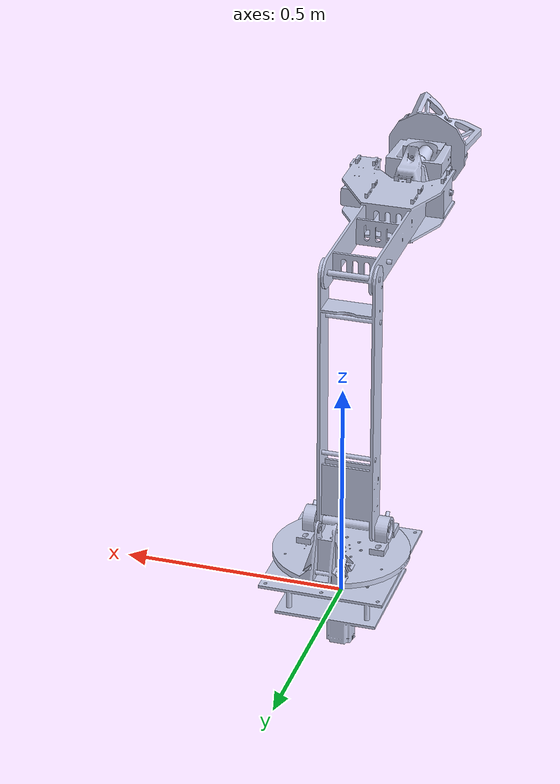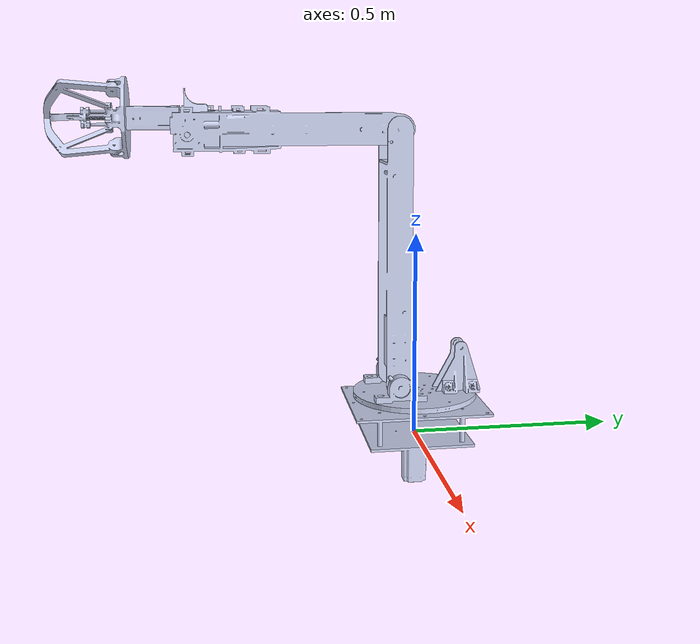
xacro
<?xml version="1.0" encoding="utf-8"?>
<robot xmlns:xacro="http://www.ros.org/wiki/xacro" name="arm_assembly">

    <xacro:arg name="arm_id" default="arm_assembly" /> <!-- Name of this arm -->
    <xacro:arg name="gazebo" default="false" /> <!-- Is the robot being simulated in gazebo? -->

    <xacro:property name="arm_id" value="$(arg arm_id)" />

    <xacro:unless value="$(arg gazebo)">
        <!-- Create a URDF for real hardware -->
        <xacro:include filename="arm_assembly.xacro" />
        <xacro:arm_assembly arm_id="${arm_id}" safety_distance="0.03" />

    </xacro:unless>

    <xacro:if value="$(arg gazebo)"> <!-- I don't think this is necessary if using moveit (RViz)-->
        <xacro:arg name="xyz" default="0 0 0" />
        <xacro:arg name="rpy" default="0 0 0" />

        <!-- Create Simulatable URDF -->

        <xacro:arm_assembly arm_id="${arm_id}" />

        <!-- Gazebo require a joint to a link called "world" for statically mounted robots -->
        <link name="world" />
        <joint name="world_joint" type="fixed">
            <origin xyz="$(arg xyz)" rpy="$(arg rpy)" />
            <parent link="world" />
            <child link="arm_link0" />
        </joint>

        <xacro:gazebo-joint joint="arm_link1_joint" transmission="hardware_interface/EffortJointInterface" />
        <xacro:gazebo-joint joint="arm_link2_joint" transmission="hardware_interface/EffortJointInterface" />
        <xacro:gazebo-joint joint="arm_link3_joint" transmission="hardware_interface/EffortJointInterface" />
        <xacro:gazebo-joint joint="arm_link4_joint" transmission="hardware_interface/EffortJointInterface" />
        <xacro:gazebo-joint joint="arm_link5_joint" transmission="hardware_interface/EffortJointInterface" />

        <xacro:transmission-arm-state arm_id="${arm_id}" />
        <xacro:transmission-arm-model arm_id="${arm_id}" root="arm_link1_joint" tip="arm_link5_joint" />

        <gazebo>
            <plugin name="gazebo_ros_control" filename="libgazebo_ros_control.so">
                <robotNamespace>${arm_id}</robotNamespace>
                <controlPeriod>0.001</controlPeriod> <!-- refresh rate -->
                <robotSimType>gazebo_ros_control/DefaultRobotHWSim</robotSimType>
            </plugin>
            <self_collide>true</self_collide>
        </gazebo>
    </xacro:if>
</robot>

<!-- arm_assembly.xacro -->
<robot xmlns:xacro="http://www.ros.org/wiki/xacro" name="arm_assembly">
    <xacro:macro name="arm_assembly" params="arm_id:='arm_assembly' description_pkg:='' connected_to:='' xyz:='0 0 0' rpy:='0 0 0' safety_distance:=0">
        <xacro:unless value="${not connected_to}">
            <joint name="${connected_to}_joint" type="fixed">
                <parent link="${connected_to}"/>
                <child link="arm_link0"/>
                <origin rpy="{rpy}" xyz="${xyz}"/>
            </joint>
        </xacro:unless>

        <link
            name="arm_link0">
            <inertial>
            <origin
                xyz="0.013967 -0.26983 0.41091"
                rpy="0 0 0" />
            <mass
                value="8.6871" />
            <inertia
                ixx="1.9198"
                ixy="0.023083"
                ixz="-0.042513"
                iyy="1.2491"
                iyz="0.84319"
                izz="0.72195" />
            </inertial>
            <visual>
            <origin
                xyz="0 0 0"
                rpy="0 0 0" />
            <geometry>
                <mesh
                filename="package://arm_assembly/meshes/arm_link0.STL" />
            </geometry>
            <material
                name="">
                <color
                rgba="0.79216 0.81961 0.93333 1" />
            </material>
            </visual>
            <collision>
            <origin
                xyz="0 0 0"
                rpy="0 0 0" />
            <geometry>
                <mesh
                filename="package://arm_assembly/meshes/arm_link0.STL" />
            </geometry>
            </collision>
        </link>
        <link
            name="arm_link1">
            <inertial>
            <origin
                xyz="0.013967 -0.26983 0.31436"
                rpy="0 0 0" />
            <mass
                value="8.6871" />
            <inertia
                ixx="1.9198"
                ixy="0.023083"
                ixz="-0.042513"
                iyy="1.2491"
                iyz="0.84319"
                izz="0.72195" />
            </inertial>
            <visual>
            <origin
                xyz="0 0 0"
                rpy="0 0 0" />
            <geometry>
                <mesh
                filename="package://arm_assembly/meshes/arm_link1.STL" />
            </geometry>
            <material
                name="">
                <color
                rgba="0.79216 0.81961 0.93333 1" />
            </material>
            </visual>
            <collision>
            <origin
                xyz="0 0 0"
                rpy="0 0 0" />
            <geometry>
                <mesh
                filename="package://arm_assembly/meshes/arm_link1.STL" />
            </geometry>
            </collision>
        </link>
        <joint
            name="arm_link1_joint"
            type="revolute">
            <safety_controller k_position="100.0" k_velocity="40.0" soft_lower_limit="-3.14" soft_upper_limit="3.14"/>
            <origin
            xyz="0 0 0.09655"
            rpy="0 0 0" />
            <parent
            link="arm_link0" />
            <child
            link="arm_link1" />
            <axis
            xyz="0 0 1" />
            <limit
            lower="-3.14"
            upper="3.14"
            effort="80"
            velocity="25" />
        </joint>
        <link
            name="arm_link2">
            <inertial>
            <origin
                xyz="0.013963 -0.21878 0.26916"
                rpy="0 0 0" />
            <mass
                value="8.6871" />
            <inertia
                ixx="1.9198"
                ixy="0.023083"
                ixz="-0.042513"
                iyy="1.2491"
                iyz="0.84319"
                izz="0.72195" />
            </inertial>
            <visual>
            <origin
                xyz="0 0 0"
                rpy="0 0 0" />
            <geometry>
                <mesh
                filename="package://arm_assembly/meshes/arm_link2.STL" />
            </geometry>
            <material
                name="">
                <color
                rgba="0.79216 0.81961 0.93333 1" />
            </material>
            </visual>
            <collision>
            <origin
                xyz="0 0 0"
                rpy="0 0 0" />
            <geometry>
                <mesh
                filename="package://arm_assembly/meshes/arm_link2.STL" />
            </geometry>
            </collision>
        </link>
        <joint
            name="arm_link2_joint"
            type="revolute">
            <safety_controller k_position="100.0" k_velocity="40.0" soft_lower_limit="-3.14" soft_upper_limit="3.14"/>
            <origin
            xyz="0 -0.051052 0.0452"
            rpy="0 0 0" />
            <parent
            link="arm_link1" />
            <child
            link="arm_link2" />
            <axis
            xyz="1 0 0" />
            <limit
            lower="-3.14"
            upper="3.14"
            effort="80"
            velocity="25" />
        </joint>
        <link
            name="arm_link3">
            <inertial>
            <origin
                xyz="0.013963 -0.21878 -0.34044"
                rpy="0 0 0" />
            <mass
                value="8.6871" />
            <inertia
                ixx="1.9198"
                ixy="0.023083"
                ixz="-0.042513"
                iyy="1.2491"
                iyz="0.84319"
                izz="0.72195" />
            </inertial>
            <visual>
            <origin
                xyz="0 0 0"
                rpy="0 0 0" />
            <geometry>
                <mesh
                filename="package://arm_assembly/meshes/arm_link3.STL" />
            </geometry>
            <material
                name="">
                <color
                rgba="0.79216 0.81961 0.93333 1" />
            </material>
            </visual>
            <collision>
            <origin
                xyz="0 0 0"
                rpy="0 0 0" />
            <geometry>
                <mesh
                filename="package://arm_assembly/meshes/arm_link3.STL" />
            </geometry>
            </collision>
        </link>
        <joint
            name="arm_link3_joint"
            type="revolute">
            <safety_controller k_position="100.0" k_velocity="40.0" soft_lower_limit="-3.14" soft_upper_limit="3.14"/>
            <origin
            xyz="0 0 0.6096"
            rpy="0 0 0" />
            <parent
            link="arm_link2" />
            <child
            link="arm_link3" />
            <axis
            xyz="-1 0 0" />
            <limit
            lower="-3.14"
            upper="3.14"
            effort="80"
            velocity="25" />
        </joint>
        <link
            name="arm_link4">
            <inertial>
            <origin
                xyz="-0.066773 0.26345 -0.33441"
                rpy="0 0 0" />
            <mass
                value="8.6871" />
            <inertia
                ixx="1.9198"
                ixy="0.023083"
                ixz="-0.042513"
                iyy="1.2491"
                iyz="0.84319"
                izz="0.72195" />
            </inertial>
            <visual>
            <origin
                xyz="0 0 0"
                rpy="0 0 0" />
            <geometry>
                <mesh
                filename="package://arm_assembly/meshes/arm_link4.STL" />
            </geometry>
            <material
                name="">
                <color
                rgba="0.79216 0.81961 0.93333 1" />
            </material>
            </visual>
            <collision>
            <origin
                xyz="0 0 0"
                rpy="0 0 0" />
            <geometry>
                <mesh
                filename="package://arm_assembly/meshes/arm_link4.STL" />
            </geometry>
            </collision>
        </link>
        <joint
            name="arm_link4_joint"
            type="revolute">
            <safety_controller k_position="100.0" k_velocity="40.0" soft_lower_limit="-3.14" soft_upper_limit="3.14"/>
            <origin
            xyz="0.080736 -0.48223 -0.00603"
            rpy="0 0 0" />
            <parent
            link="arm_link3" />
            <child
            link="arm_link4" />
            <axis
            xyz="1 0 0" />
            <limit
            lower="-3.14"
            upper="3.14"
            effort="80"
            velocity="25" />
        </joint>
        <link
            name="arm_link5">
            <inertial>
            <origin
                xyz="0.014247 0.28573 -0.36767"
                rpy="0 0 0" />
            <mass
                value="8.6871" />
            <inertia
                ixx="1.9198"
                ixy="0.023083"
                ixz="-0.042513"
                iyy="1.2491"
                iyz="0.84319"
                izz="0.72195" />
            </inertial>
            <visual>
            <origin
                xyz="0 0 0"
                rpy="0 0 0" />
            <geometry>
                <mesh
                filename="package://arm_assembly/meshes/arm_link5.STL" />
            </geometry>
            <material
                name="">
                <color
                rgba="0.79216 0.81961 0.93333 1" />
            </material>
            </visual>
            <collision>
            <origin
                xyz="0 0 0"
                rpy="0 0 0" />
            <geometry>
                <mesh
                filename="package://arm_assembly/meshes/arm_link5.STL" />
            </geometry>
            </collision>
        </link>
        <joint
            name="arm_link5_joint"
            type="revolute">
            <safety_controller k_position="100.0" k_velocity="40.0" soft_lower_limit="-3.14" soft_upper_limit="3.14"/>
            <origin
            xyz="-0.08102 -0.02228 0.03326"
            rpy="0 0 0" />
            <parent
            link="arm_link4" />
            <child
            link="arm_link5" />
            <axis
            xyz="0 -1 0" />
            <limit
            lower="-3.14"
            upper="3.14"
            effort="80"
            velocity="25" />
        </joint>
    </xacro:macro>
</robot>
